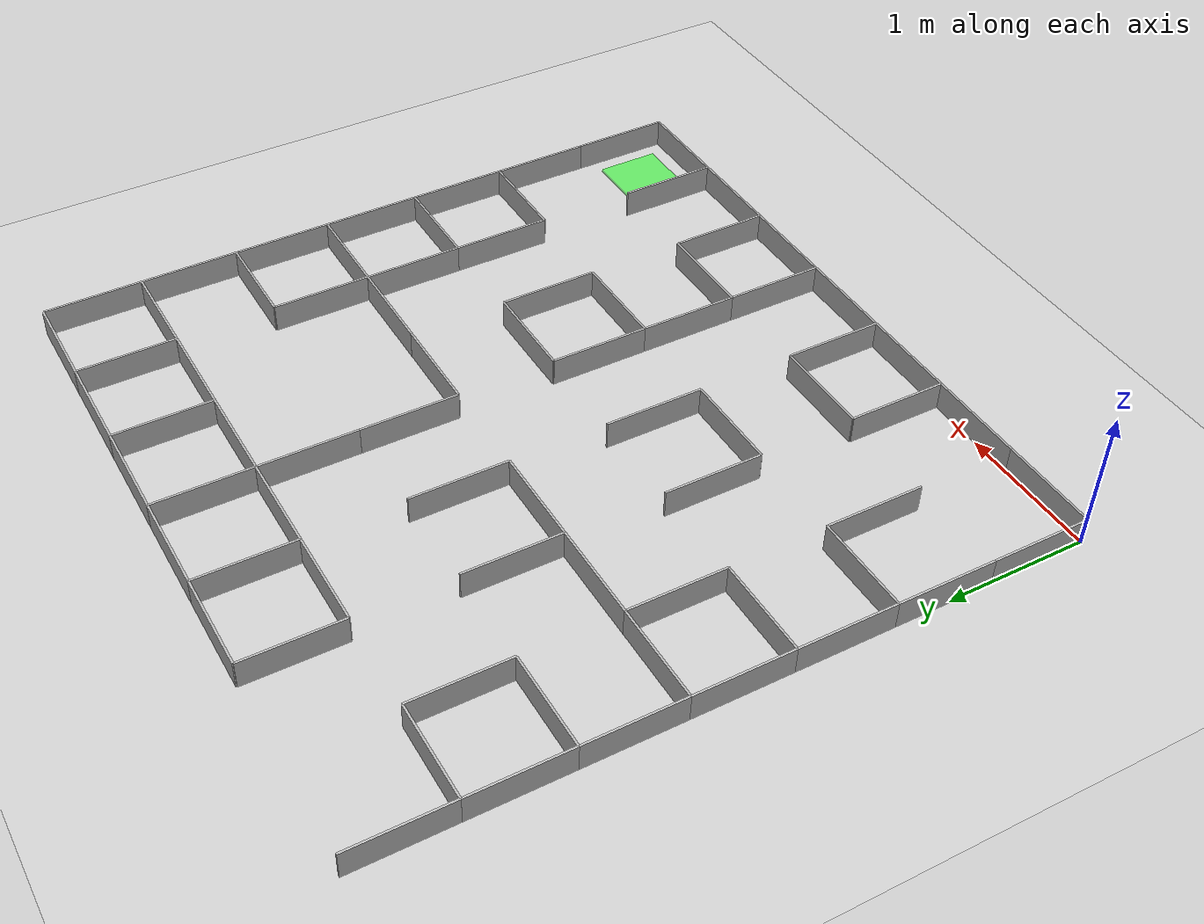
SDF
<?xml version="1.0" ?>
<sdf version="1.6">
<world name="maze_world">
<include><uri>model://ground_plane</uri></include>
<include><uri>model://sun</uri></include>

<model name="h_0">
  <static>true</static>
  <pose>0.350 0.000 0.100 0 0 0</pose>
  <link name="link">
    <collision name="collision">
      <geometry><box><size>0.700 0.015 0.200</size></box></geometry>
    </collision>
    <visual name="visual">
      <geometry><box><size>0.700 0.015 0.200</size></box></geometry>
    </visual>
  </link>
</model>

<model name="h_1">
  <static>true</static>
  <pose>1.050 0.000 0.100 0 0 0</pose>
  <link name="link">
    <collision name="collision">
      <geometry><box><size>0.700 0.015 0.200</size></box></geometry>
    </collision>
    <visual name="visual">
      <geometry><box><size>0.700 0.015 0.200</size></box></geometry>
    </visual>
  </link>
</model>

<model name="h_2">
  <static>true</static>
  <pose>1.750 0.000 0.100 0 0 0</pose>
  <link name="link">
    <collision name="collision">
      <geometry><box><size>0.700 0.015 0.200</size></box></geometry>
    </collision>
    <visual name="visual">
      <geometry><box><size>0.700 0.015 0.200</size></box></geometry>
    </visual>
  </link>
</model>

<model name="h_3">
  <static>true</static>
  <pose>2.450 0.000 0.100 0 0 0</pose>
  <link name="link">
    <collision name="collision">
      <geometry><box><size>0.700 0.015 0.200</size></box></geometry>
    </collision>
    <visual name="visual">
      <geometry><box><size>0.700 0.015 0.200</size></box></geometry>
    </visual>
  </link>
</model>

<model name="h_4">
  <static>true</static>
  <pose>3.150 0.000 0.100 0 0 0</pose>
  <link name="link">
    <collision name="collision">
      <geometry><box><size>0.700 0.015 0.200</size></box></geometry>
    </collision>
    <visual name="visual">
      <geometry><box><size>0.700 0.015 0.200</size></box></geometry>
    </visual>
  </link>
</model>

<model name="h_5">
  <static>true</static>
  <pose>3.850 0.000 0.100 0 0 0</pose>
  <link name="link">
    <collision name="collision">
      <geometry><box><size>0.700 0.015 0.200</size></box></geometry>
    </collision>
    <visual name="visual">
      <geometry><box><size>0.700 0.015 0.200</size></box></geometry>
    </visual>
  </link>
</model>

<model name="h_6">
  <static>true</static>
  <pose>4.550 0.000 0.100 0 0 0</pose>
  <link name="link">
    <collision name="collision">
      <geometry><box><size>0.700 0.015 0.200</size></box></geometry>
    </collision>
    <visual name="visual">
      <geometry><box><size>0.700 0.015 0.200</size></box></geometry>
    </visual>
  </link>
</model>

<model name="h_7">
  <static>true</static>
  <pose>1.750 0.700 0.100 0 0 0</pose>
  <link name="link">
    <collision name="collision">
      <geometry><box><size>0.700 0.015 0.200</size></box></geometry>
    </collision>
    <visual name="visual">
      <geometry><box><size>0.700 0.015 0.200</size></box></geometry>
    </visual>
  </link>
</model>

<model name="h_8">
  <static>true</static>
  <pose>3.150 0.700 0.100 0 0 0</pose>
  <link name="link">
    <collision name="collision">
      <geometry><box><size>0.700 0.015 0.200</size></box></geometry>
    </collision>
    <visual name="visual">
      <geometry><box><size>0.700 0.015 0.200</size></box></geometry>
    </visual>
  </link>
</model>

<model name="h_9">
  <static>true</static>
  <pose>0.350 1.400 0.100 0 0 0</pose>
  <link name="link">
    <collision name="collision">
      <geometry><box><size>0.700 0.015 0.200</size></box></geometry>
    </collision>
    <visual name="visual">
      <geometry><box><size>0.700 0.015 0.200</size></box></geometry>
    </visual>
  </link>
</model>

<model name="h_10">
  <static>true</static>
  <pose>1.750 1.400 0.100 0 0 0</pose>
  <link name="link">
    <collision name="collision">
      <geometry><box><size>0.700 0.015 0.200</size></box></geometry>
    </collision>
    <visual name="visual">
      <geometry><box><size>0.700 0.015 0.200</size></box></geometry>
    </visual>
  </link>
</model>

<model name="h_11">
  <static>true</static>
  <pose>3.150 1.400 0.100 0 0 0</pose>
  <link name="link">
    <collision name="collision">
      <geometry><box><size>0.700 0.015 0.200</size></box></geometry>
    </collision>
    <visual name="visual">
      <geometry><box><size>0.700 0.015 0.200</size></box></geometry>
    </visual>
  </link>
</model>

<model name="h_12">
  <static>true</static>
  <pose>4.550 1.400 0.100 0 0 0</pose>
  <link name="link">
    <collision name="collision">
      <geometry><box><size>0.700 0.015 0.200</size></box></geometry>
    </collision>
    <visual name="visual">
      <geometry><box><size>0.700 0.015 0.200</size></box></geometry>
    </visual>
  </link>
</model>

<model name="h_13">
  <static>true</static>
  <pose>0.350 2.100 0.100 0 0 0</pose>
  <link name="link">
    <collision name="collision">
      <geometry><box><size>0.700 0.015 0.200</size></box></geometry>
    </collision>
    <visual name="visual">
      <geometry><box><size>0.700 0.015 0.200</size></box></geometry>
    </visual>
  </link>
</model>

<model name="h_14">
  <static>true</static>
  <pose>3.150 2.100 0.100 0 0 0</pose>
  <link name="link">
    <collision name="collision">
      <geometry><box><size>0.700 0.015 0.200</size></box></geometry>
    </collision>
    <visual name="visual">
      <geometry><box><size>0.700 0.015 0.200</size></box></geometry>
    </visual>
  </link>
</model>

<model name="h_15">
  <static>true</static>
  <pose>4.550 2.100 0.100 0 0 0</pose>
  <link name="link">
    <collision name="collision">
      <geometry><box><size>0.700 0.015 0.200</size></box></geometry>
    </collision>
    <visual name="visual">
      <geometry><box><size>0.700 0.015 0.200</size></box></geometry>
    </visual>
  </link>
</model>

<model name="h_16">
  <static>true</static>
  <pose>0.350 2.800 0.100 0 0 0</pose>
  <link name="link">
    <collision name="collision">
      <geometry><box><size>0.700 0.015 0.200</size></box></geometry>
    </collision>
    <visual name="visual">
      <geometry><box><size>0.700 0.015 0.200</size></box></geometry>
    </visual>
  </link>
</model>

<model name="h_17">
  <static>true</static>
  <pose>1.050 2.800 0.100 0 0 0</pose>
  <link name="link">
    <collision name="collision">
      <geometry><box><size>0.700 0.015 0.200</size></box></geometry>
    </collision>
    <visual name="visual">
      <geometry><box><size>0.700 0.015 0.200</size></box></geometry>
    </visual>
  </link>
</model>

<model name="h_18">
  <static>true</static>
  <pose>1.750 2.800 0.100 0 0 0</pose>
  <link name="link">
    <collision name="collision">
      <geometry><box><size>0.700 0.015 0.200</size></box></geometry>
    </collision>
    <visual name="visual">
      <geometry><box><size>0.700 0.015 0.200</size></box></geometry>
    </visual>
  </link>
</model>

<model name="h_19">
  <static>true</static>
  <pose>3.150 2.800 0.100 0 0 0</pose>
  <link name="link">
    <collision name="collision">
      <geometry><box><size>0.700 0.015 0.200</size></box></geometry>
    </collision>
    <visual name="visual">
      <geometry><box><size>0.700 0.015 0.200</size></box></geometry>
    </visual>
  </link>
</model>

<model name="h_20">
  <static>true</static>
  <pose>3.850 2.800 0.100 0 0 0</pose>
  <link name="link">
    <collision name="collision">
      <geometry><box><size>0.700 0.015 0.200</size></box></geometry>
    </collision>
    <visual name="visual">
      <geometry><box><size>0.700 0.015 0.200</size></box></geometry>
    </visual>
  </link>
</model>

<model name="h_21">
  <static>true</static>
  <pose>4.550 2.800 0.100 0 0 0</pose>
  <link name="link">
    <collision name="collision">
      <geometry><box><size>0.700 0.015 0.200</size></box></geometry>
    </collision>
    <visual name="visual">
      <geometry><box><size>0.700 0.015 0.200</size></box></geometry>
    </visual>
  </link>
</model>

<model name="h_22">
  <static>true</static>
  <pose>0.350 3.500 0.100 0 0 0</pose>
  <link name="link">
    <collision name="collision">
      <geometry><box><size>0.700 0.015 0.200</size></box></geometry>
    </collision>
    <visual name="visual">
      <geometry><box><size>0.700 0.015 0.200</size></box></geometry>
    </visual>
  </link>
</model>

<model name="h_23">
  <static>true</static>
  <pose>4.550 3.500 0.100 0 0 0</pose>
  <link name="link">
    <collision name="collision">
      <geometry><box><size>0.700 0.015 0.200</size></box></geometry>
    </collision>
    <visual name="visual">
      <geometry><box><size>0.700 0.015 0.200</size></box></geometry>
    </visual>
  </link>
</model>

<model name="h_24">
  <static>true</static>
  <pose>0.350 4.200 0.100 0 0 0</pose>
  <link name="link">
    <collision name="collision">
      <geometry><box><size>0.700 0.015 0.200</size></box></geometry>
    </collision>
    <visual name="visual">
      <geometry><box><size>0.700 0.015 0.200</size></box></geometry>
    </visual>
  </link>
</model>

<model name="h_25">
  <static>true</static>
  <pose>1.750 4.200 0.100 0 0 0</pose>
  <link name="link">
    <collision name="collision">
      <geometry><box><size>0.700 0.015 0.200</size></box></geometry>
    </collision>
    <visual name="visual">
      <geometry><box><size>0.700 0.015 0.200</size></box></geometry>
    </visual>
  </link>
</model>

<model name="h_26">
  <static>true</static>
  <pose>2.450 4.200 0.100 0 0 0</pose>
  <link name="link">
    <collision name="collision">
      <geometry><box><size>0.700 0.015 0.200</size></box></geometry>
    </collision>
    <visual name="visual">
      <geometry><box><size>0.700 0.015 0.200</size></box></geometry>
    </visual>
  </link>
</model>

<model name="h_27">
  <static>true</static>
  <pose>3.150 4.200 0.100 0 0 0</pose>
  <link name="link">
    <collision name="collision">
      <geometry><box><size>0.700 0.015 0.200</size></box></geometry>
    </collision>
    <visual name="visual">
      <geometry><box><size>0.700 0.015 0.200</size></box></geometry>
    </visual>
  </link>
</model>

<model name="h_28">
  <static>true</static>
  <pose>3.850 4.200 0.100 0 0 0</pose>
  <link name="link">
    <collision name="collision">
      <geometry><box><size>0.700 0.015 0.200</size></box></geometry>
    </collision>
    <visual name="visual">
      <geometry><box><size>0.700 0.015 0.200</size></box></geometry>
    </visual>
  </link>
</model>

<model name="h_29">
  <static>true</static>
  <pose>4.550 4.200 0.100 0 0 0</pose>
  <link name="link">
    <collision name="collision">
      <geometry><box><size>0.700 0.015 0.200</size></box></geometry>
    </collision>
    <visual name="visual">
      <geometry><box><size>0.700 0.015 0.200</size></box></geometry>
    </visual>
  </link>
</model>

<model name="h_30">
  <static>true</static>
  <pose>1.750 4.900 0.100 0 0 0</pose>
  <link name="link">
    <collision name="collision">
      <geometry><box><size>0.700 0.015 0.200</size></box></geometry>
    </collision>
    <visual name="visual">
      <geometry><box><size>0.700 0.015 0.200</size></box></geometry>
    </visual>
  </link>
</model>

<model name="h_31">
  <static>true</static>
  <pose>2.450 4.900 0.100 0 0 0</pose>
  <link name="link">
    <collision name="collision">
      <geometry><box><size>0.700 0.015 0.200</size></box></geometry>
    </collision>
    <visual name="visual">
      <geometry><box><size>0.700 0.015 0.200</size></box></geometry>
    </visual>
  </link>
</model>

<model name="h_32">
  <static>true</static>
  <pose>3.150 4.900 0.100 0 0 0</pose>
  <link name="link">
    <collision name="collision">
      <geometry><box><size>0.700 0.015 0.200</size></box></geometry>
    </collision>
    <visual name="visual">
      <geometry><box><size>0.700 0.015 0.200</size></box></geometry>
    </visual>
  </link>
</model>

<model name="h_33">
  <static>true</static>
  <pose>3.850 4.900 0.100 0 0 0</pose>
  <link name="link">
    <collision name="collision">
      <geometry><box><size>0.700 0.015 0.200</size></box></geometry>
    </collision>
    <visual name="visual">
      <geometry><box><size>0.700 0.015 0.200</size></box></geometry>
    </visual>
  </link>
</model>

<model name="h_34">
  <static>true</static>
  <pose>4.550 4.900 0.100 0 0 0</pose>
  <link name="link">
    <collision name="collision">
      <geometry><box><size>0.700 0.015 0.200</size></box></geometry>
    </collision>
    <visual name="visual">
      <geometry><box><size>0.700 0.015 0.200</size></box></geometry>
    </visual>
  </link>
</model>

<model name="v_35">
  <static>true</static>
  <pose>0.000 0.350 0.100 0 0 0</pose>
  <link name="link">
    <collision name="collision">
      <geometry><box><size>0.015 0.700 0.200</size></box></geometry>
    </collision>
    <visual name="visual">
      <geometry><box><size>0.015 0.700 0.200</size></box></geometry>
    </visual>
  </link>
</model>

<model name="v_36">
  <static>true</static>
  <pose>0.000 1.050 0.100 0 0 0</pose>
  <link name="link">
    <collision name="collision">
      <geometry><box><size>0.015 0.700 0.200</size></box></geometry>
    </collision>
    <visual name="visual">
      <geometry><box><size>0.015 0.700 0.200</size></box></geometry>
    </visual>
  </link>
</model>

<model name="v_37">
  <static>true</static>
  <pose>0.000 1.750 0.100 0 0 0</pose>
  <link name="link">
    <collision name="collision">
      <geometry><box><size>0.015 0.700 0.200</size></box></geometry>
    </collision>
    <visual name="visual">
      <geometry><box><size>0.015 0.700 0.200</size></box></geometry>
    </visual>
  </link>
</model>

<model name="v_38">
  <static>true</static>
  <pose>0.000 2.450 0.100 0 0 0</pose>
  <link name="link">
    <collision name="collision">
      <geometry><box><size>0.015 0.700 0.200</size></box></geometry>
    </collision>
    <visual name="visual">
      <geometry><box><size>0.015 0.700 0.200</size></box></geometry>
    </visual>
  </link>
</model>

<model name="v_39">
  <static>true</static>
  <pose>0.000 3.150 0.100 0 0 0</pose>
  <link name="link">
    <collision name="collision">
      <geometry><box><size>0.015 0.700 0.200</size></box></geometry>
    </collision>
    <visual name="visual">
      <geometry><box><size>0.015 0.700 0.200</size></box></geometry>
    </visual>
  </link>
</model>

<model name="v_40">
  <static>true</static>
  <pose>0.000 3.850 0.100 0 0 0</pose>
  <link name="link">
    <collision name="collision">
      <geometry><box><size>0.015 0.700 0.200</size></box></geometry>
    </collision>
    <visual name="visual">
      <geometry><box><size>0.015 0.700 0.200</size></box></geometry>
    </visual>
  </link>
</model>

<model name="v_41">
  <static>true</static>
  <pose>0.000 4.550 0.100 0 0 0</pose>
  <link name="link">
    <collision name="collision">
      <geometry><box><size>0.015 0.700 0.200</size></box></geometry>
    </collision>
    <visual name="visual">
      <geometry><box><size>0.015 0.700 0.200</size></box></geometry>
    </visual>
  </link>
</model>

<model name="v_42">
  <static>true</static>
  <pose>0.700 1.050 0.100 0 0 0</pose>
  <link name="link">
    <collision name="collision">
      <geometry><box><size>0.015 0.700 0.200</size></box></geometry>
    </collision>
    <visual name="visual">
      <geometry><box><size>0.015 0.700 0.200</size></box></geometry>
    </visual>
  </link>
</model>

<model name="v_43">
  <static>true</static>
  <pose>0.700 2.450 0.100 0 0 0</pose>
  <link name="link">
    <collision name="collision">
      <geometry><box><size>0.015 0.700 0.200</size></box></geometry>
    </collision>
    <visual name="visual">
      <geometry><box><size>0.015 0.700 0.200</size></box></geometry>
    </visual>
  </link>
</model>

<model name="v_44">
  <static>true</static>
  <pose>0.700 3.850 0.100 0 0 0</pose>
  <link name="link">
    <collision name="collision">
      <geometry><box><size>0.015 0.700 0.200</size></box></geometry>
    </collision>
    <visual name="visual">
      <geometry><box><size>0.015 0.700 0.200</size></box></geometry>
    </visual>
  </link>
</model>

<model name="v_45">
  <static>true</static>
  <pose>1.400 0.350 0.100 0 0 0</pose>
  <link name="link">
    <collision name="collision">
      <geometry><box><size>0.015 0.700 0.200</size></box></geometry>
    </collision>
    <visual name="visual">
      <geometry><box><size>0.015 0.700 0.200</size></box></geometry>
    </visual>
  </link>
</model>

<model name="v_46">
  <static>true</static>
  <pose>1.400 1.750 0.100 0 0 0</pose>
  <link name="link">
    <collision name="collision">
      <geometry><box><size>0.015 0.700 0.200</size></box></geometry>
    </collision>
    <visual name="visual">
      <geometry><box><size>0.015 0.700 0.200</size></box></geometry>
    </visual>
  </link>
</model>

<model name="v_47">
  <static>true</static>
  <pose>1.400 3.150 0.100 0 0 0</pose>
  <link name="link">
    <collision name="collision">
      <geometry><box><size>0.015 0.700 0.200</size></box></geometry>
    </collision>
    <visual name="visual">
      <geometry><box><size>0.015 0.700 0.200</size></box></geometry>
    </visual>
  </link>
</model>

<model name="v_48">
  <static>true</static>
  <pose>1.400 4.550 0.100 0 0 0</pose>
  <link name="link">
    <collision name="collision">
      <geometry><box><size>0.015 0.700 0.200</size></box></geometry>
    </collision>
    <visual name="visual">
      <geometry><box><size>0.015 0.700 0.200</size></box></geometry>
    </visual>
  </link>
</model>

<model name="v_49">
  <static>true</static>
  <pose>2.100 0.350 0.100 0 0 0</pose>
  <link name="link">
    <collision name="collision">
      <geometry><box><size>0.015 0.700 0.200</size></box></geometry>
    </collision>
    <visual name="visual">
      <geometry><box><size>0.015 0.700 0.200</size></box></geometry>
    </visual>
  </link>
</model>

<model name="v_50">
  <static>true</static>
  <pose>2.100 1.750 0.100 0 0 0</pose>
  <link name="link">
    <collision name="collision">
      <geometry><box><size>0.015 0.700 0.200</size></box></geometry>
    </collision>
    <visual name="visual">
      <geometry><box><size>0.015 0.700 0.200</size></box></geometry>
    </visual>
  </link>
</model>

<model name="v_51">
  <static>true</static>
  <pose>2.100 3.150 0.100 0 0 0</pose>
  <link name="link">
    <collision name="collision">
      <geometry><box><size>0.015 0.700 0.200</size></box></geometry>
    </collision>
    <visual name="visual">
      <geometry><box><size>0.015 0.700 0.200</size></box></geometry>
    </visual>
  </link>
</model>

<model name="v_52">
  <static>true</static>
  <pose>2.100 4.550 0.100 0 0 0</pose>
  <link name="link">
    <collision name="collision">
      <geometry><box><size>0.015 0.700 0.200</size></box></geometry>
    </collision>
    <visual name="visual">
      <geometry><box><size>0.015 0.700 0.200</size></box></geometry>
    </visual>
  </link>
</model>

<model name="v_53">
  <static>true</static>
  <pose>2.800 0.350 0.100 0 0 0</pose>
  <link name="link">
    <collision name="collision">
      <geometry><box><size>0.015 0.700 0.200</size></box></geometry>
    </collision>
    <visual name="visual">
      <geometry><box><size>0.015 0.700 0.200</size></box></geometry>
    </visual>
  </link>
</model>

<model name="v_54">
  <static>true</static>
  <pose>2.800 1.050 0.100 0 0 0</pose>
  <link name="link">
    <collision name="collision">
      <geometry><box><size>0.015 0.700 0.200</size></box></geometry>
    </collision>
    <visual name="visual">
      <geometry><box><size>0.015 0.700 0.200</size></box></geometry>
    </visual>
  </link>
</model>

<model name="v_55">
  <static>true</static>
  <pose>2.800 1.750 0.100 0 0 0</pose>
  <link name="link">
    <collision name="collision">
      <geometry><box><size>0.015 0.700 0.200</size></box></geometry>
    </collision>
    <visual name="visual">
      <geometry><box><size>0.015 0.700 0.200</size></box></geometry>
    </visual>
  </link>
</model>

<model name="v_56">
  <static>true</static>
  <pose>2.800 3.150 0.100 0 0 0</pose>
  <link name="link">
    <collision name="collision">
      <geometry><box><size>0.015 0.700 0.200</size></box></geometry>
    </collision>
    <visual name="visual">
      <geometry><box><size>0.015 0.700 0.200</size></box></geometry>
    </visual>
  </link>
</model>

<model name="v_57">
  <static>true</static>
  <pose>2.800 3.850 0.100 0 0 0</pose>
  <link name="link">
    <collision name="collision">
      <geometry><box><size>0.015 0.700 0.200</size></box></geometry>
    </collision>
    <visual name="visual">
      <geometry><box><size>0.015 0.700 0.200</size></box></geometry>
    </visual>
  </link>
</model>

<model name="v_58">
  <static>true</static>
  <pose>2.800 4.550 0.100 0 0 0</pose>
  <link name="link">
    <collision name="collision">
      <geometry><box><size>0.015 0.700 0.200</size></box></geometry>
    </collision>
    <visual name="visual">
      <geometry><box><size>0.015 0.700 0.200</size></box></geometry>
    </visual>
  </link>
</model>

<model name="v_59">
  <static>true</static>
  <pose>3.500 0.350 0.100 0 0 0</pose>
  <link name="link">
    <collision name="collision">
      <geometry><box><size>0.015 0.700 0.200</size></box></geometry>
    </collision>
    <visual name="visual">
      <geometry><box><size>0.015 0.700 0.200</size></box></geometry>
    </visual>
  </link>
</model>

<model name="v_60">
  <static>true</static>
  <pose>3.500 1.750 0.100 0 0 0</pose>
  <link name="link">
    <collision name="collision">
      <geometry><box><size>0.015 0.700 0.200</size></box></geometry>
    </collision>
    <visual name="visual">
      <geometry><box><size>0.015 0.700 0.200</size></box></geometry>
    </visual>
  </link>
</model>

<model name="v_61">
  <static>true</static>
  <pose>3.500 4.550 0.100 0 0 0</pose>
  <link name="link">
    <collision name="collision">
      <geometry><box><size>0.015 0.700 0.200</size></box></geometry>
    </collision>
    <visual name="visual">
      <geometry><box><size>0.015 0.700 0.200</size></box></geometry>
    </visual>
  </link>
</model>

<model name="v_62">
  <static>true</static>
  <pose>4.200 0.350 0.100 0 0 0</pose>
  <link name="link">
    <collision name="collision">
      <geometry><box><size>0.015 0.700 0.200</size></box></geometry>
    </collision>
    <visual name="visual">
      <geometry><box><size>0.015 0.700 0.200</size></box></geometry>
    </visual>
  </link>
</model>

<model name="v_63">
  <static>true</static>
  <pose>4.200 1.750 0.100 0 0 0</pose>
  <link name="link">
    <collision name="collision">
      <geometry><box><size>0.015 0.700 0.200</size></box></geometry>
    </collision>
    <visual name="visual">
      <geometry><box><size>0.015 0.700 0.200</size></box></geometry>
    </visual>
  </link>
</model>

<model name="v_64">
  <static>true</static>
  <pose>4.200 2.450 0.100 0 0 0</pose>
  <link name="link">
    <collision name="collision">
      <geometry><box><size>0.015 0.700 0.200</size></box></geometry>
    </collision>
    <visual name="visual">
      <geometry><box><size>0.015 0.700 0.200</size></box></geometry>
    </visual>
  </link>
</model>

<model name="v_65">
  <static>true</static>
  <pose>4.200 3.150 0.100 0 0 0</pose>
  <link name="link">
    <collision name="collision">
      <geometry><box><size>0.015 0.700 0.200</size></box></geometry>
    </collision>
    <visual name="visual">
      <geometry><box><size>0.015 0.700 0.200</size></box></geometry>
    </visual>
  </link>
</model>

<model name="v_66">
  <static>true</static>
  <pose>4.200 4.550 0.100 0 0 0</pose>
  <link name="link">
    <collision name="collision">
      <geometry><box><size>0.015 0.700 0.200</size></box></geometry>
    </collision>
    <visual name="visual">
      <geometry><box><size>0.015 0.700 0.200</size></box></geometry>
    </visual>
  </link>
</model>

<model name="v_67">
  <static>true</static>
  <pose>4.900 0.350 0.100 0 0 0</pose>
  <link name="link">
    <collision name="collision">
      <geometry><box><size>0.015 0.700 0.200</size></box></geometry>
    </collision>
    <visual name="visual">
      <geometry><box><size>0.015 0.700 0.200</size></box></geometry>
    </visual>
  </link>
</model>

<model name="v_68">
  <static>true</static>
  <pose>4.900 1.050 0.100 0 0 0</pose>
  <link name="link">
    <collision name="collision">
      <geometry><box><size>0.015 0.700 0.200</size></box></geometry>
    </collision>
    <visual name="visual">
      <geometry><box><size>0.015 0.700 0.200</size></box></geometry>
    </visual>
  </link>
</model>

<model name="v_69">
  <static>true</static>
  <pose>4.900 1.750 0.100 0 0 0</pose>
  <link name="link">
    <collision name="collision">
      <geometry><box><size>0.015 0.700 0.200</size></box></geometry>
    </collision>
    <visual name="visual">
      <geometry><box><size>0.015 0.700 0.200</size></box></geometry>
    </visual>
  </link>
</model>

<model name="v_70">
  <static>true</static>
  <pose>4.900 2.450 0.100 0 0 0</pose>
  <link name="link">
    <collision name="collision">
      <geometry><box><size>0.015 0.700 0.200</size></box></geometry>
    </collision>
    <visual name="visual">
      <geometry><box><size>0.015 0.700 0.200</size></box></geometry>
    </visual>
  </link>
</model>

<model name="v_71">
  <static>true</static>
  <pose>4.900 3.150 0.100 0 0 0</pose>
  <link name="link">
    <collision name="collision">
      <geometry><box><size>0.015 0.700 0.200</size></box></geometry>
    </collision>
    <visual name="visual">
      <geometry><box><size>0.015 0.700 0.200</size></box></geometry>
    </visual>
  </link>
</model>

<model name="v_72">
  <static>true</static>
  <pose>4.900 3.850 0.100 0 0 0</pose>
  <link name="link">
    <collision name="collision">
      <geometry><box><size>0.015 0.700 0.200</size></box></geometry>
    </collision>
    <visual name="visual">
      <geometry><box><size>0.015 0.700 0.200</size></box></geometry>
    </visual>
  </link>
</model>

<model name="v_73">
  <static>true</static>
  <pose>4.900 4.550 0.100 0 0 0</pose>
  <link name="link">
    <collision name="collision">
      <geometry><box><size>0.015 0.700 0.200</size></box></geometry>
    </collision>
    <visual name="visual">
      <geometry><box><size>0.015 0.700 0.200</size></box></geometry>
    </visual>
  </link>
</model>

<model name="target_marker">
  <static>true</static>
  <pose>4.550 0.350 0.01 0 0 0</pose>
  <link name="link">
    <visual name="visual">
      <geometry><box><size>0.45 0.45 0.02</size></box></geometry>
      <material><ambient>0 1 0 0.5</ambient></material>
    </visual>
  </link>
</model>
</world></sdf>
